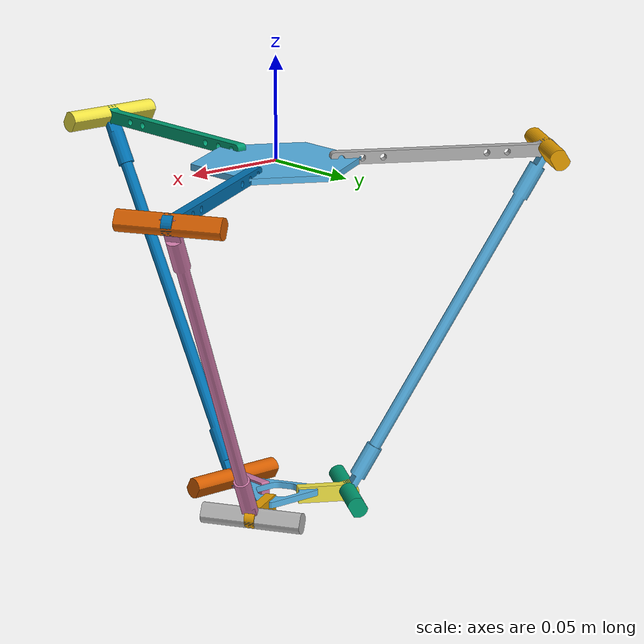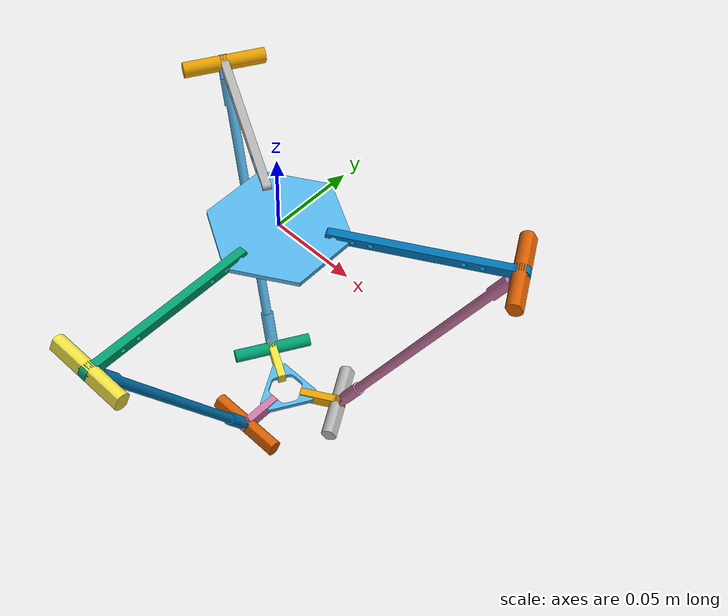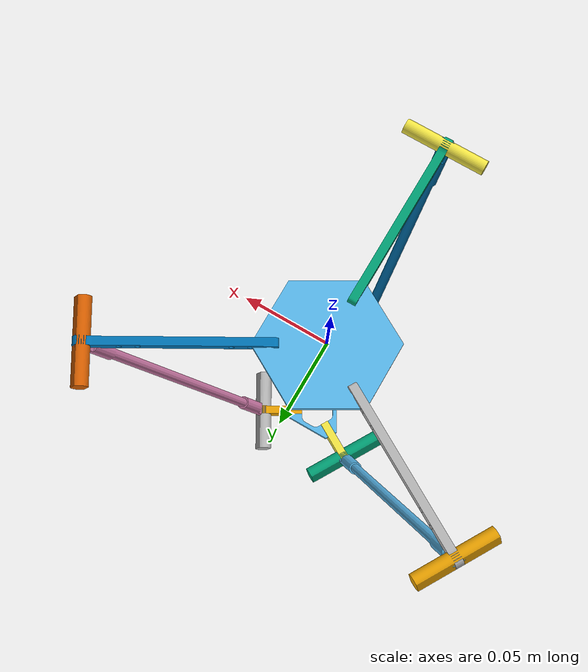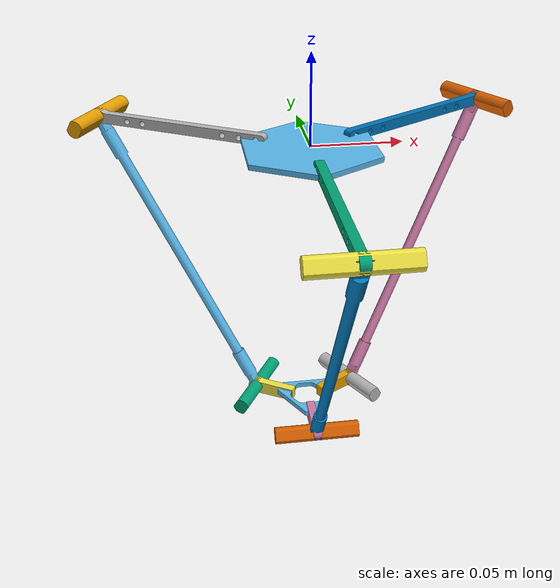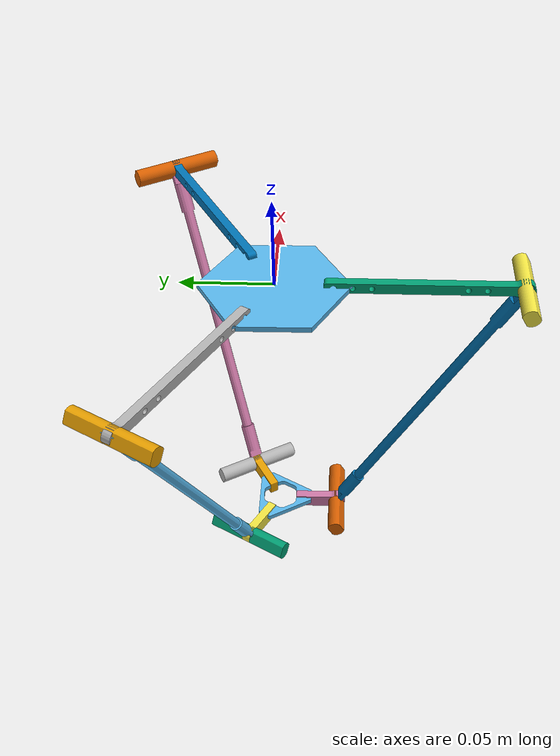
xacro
<?xml version="1.0"?>
<robot xmlns:xacro="http://www.ros.org/wiki/xacro" name="delta">

    <xacro:arg name="use_simulation" default="true"/>
    <xacro:if value="$(arg use_simulation)">
        <gazebo>
            <plugin name="arm_ros_control" filename="libarm_robot_hw_sim.so">
                <robotNamespace>/</robotNamespace>
                <robotSimType>arm_gazebo/ArmRobotHWSim</robotSimType>
            </plugin>
        </gazebo>
    </xacro:if>

    <xacro:include filename="$(find delta)/urdf/arm.urdf.xacro"/>
    <xacro:arm/>
    <xacro:include filename="$(find delta)/urdf/arm.transmission.xacro"/>
    <xacro:arm_transmission/>
</robot>

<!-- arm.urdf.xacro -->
<robot xmlns:xacro="http://www.ros.org/wiki/xacro" name="arm">

    <xacro:macro name="arm">
        <xacro:property name="k_f" value="0.141067"/>
        <xacro:property name="k_e" value="0.065287"/>
        <xacro:property name="r_f" value="0.09"/>
        <xacro:property name="r_e" value="0.192"/>
        <xacro:property name="active_joint_d" value="0.040721"/>
        <xacro:property name="parallel_d" value="0.096108"/>
        <xacro:property name="parallel_h" value="0.166214"/>
        <xacro:property name="PI_3" value="1.04619753"/>
        <xacro:property name="PI_3_2" value="2.09439507"/>
        <xacro:property name="v120_deg_2_rad" value="2.09439504"/>
        <xacro:property name="v240_deg_2_rad" value="4.18879013"/>

        <xacro:property name="active_arm_ixx" value="4.714e-6"/>
        <xacro:property name="active_arm_ixy" value="0."/>
        <xacro:property name="active_arm_ixz" value="0."/>
        <xacro:property name="active_arm_iyy" value="2.577e-8"/>
        <xacro:property name="active_arm_iyz" value="-8.235e-18"/>
        <xacro:property name="active_arm_izz" value="4.707e-6"/>
        <xacro:property name="active_arm_mass" value="0.00457"/>
        <xacro:property name="active_arm_x" value="0."/>
        <xacro:property name="active_arm_y" value="-0.042671"/>
        <xacro:property name="active_arm_z" value="0."/>

        <xacro:property name="passive_arm_ixx" value="4.4636101e-5"/>
        <xacro:property name="passive_arm_ixy" value="7.8174e-8"/>
        <xacro:property name="passive_arm_ixz" value="0."/>
        <xacro:property name="passive_arm_iyy" value="8.2492e-8"/>
        <xacro:property name="passive_arm_iyz" value="1.379e-19"/>
        <xacro:property name="passive_arm_izz" value="4.4642e-5"/>
        <xacro:property name="passive_arm_mass" value="0.011"/>
        <xacro:property name="passive_arm_x" value="-0.00168"/>
        <xacro:property name="passive_arm_y" value="0.096"/>
        <xacro:property name="passive_arm_z" value="0."/>

        <xacro:property name="parallel_up_ixx" value="3.16967e-7"/>
        <xacro:property name="parallel_up_ixy" value="0.00"/>
        <xacro:property name="parallel_up_ixz" value="0.00"/>
        <xacro:property name="parallel_up_iyy" value="5.926399e-6"/>
        <xacro:property name="parallel_up_iyz" value="2.4474e-8"/>
        <xacro:property name="parallel_up_izz" value="5.898139e-6"/>
        <xacro:property name="parallel_up_mass" value="0.027"/>
        <xacro:property name="parallel_up_x" value="0.00"/>
        <xacro:property name="parallel_up_y" value="0.0"/>
        <xacro:property name="parallel_up_z" value="0.0"/>

        <xacro:property name="parallel_down_ixx" value="3.16967e-7"/>
        <xacro:property name="parallel_down_ixy" value="1.095e-10"/>
        <xacro:property name="parallel_down_ixz" value="1.29e-10"/>
        <xacro:property name="parallel_down_iyy" value="5.926399e-6"/>
        <xacro:property name="parallel_down_iyz" value="2.4474e-8"/>
        <xacro:property name="parallel_down_izz" value="5.898139e-6"/>
        <xacro:property name="parallel_down_mass" value="0.027"/>
        <xacro:property name="parallel_down_x" value="0.00"/>
        <xacro:property name="parallel_down_y" value="0.0"/>
        <xacro:property name="parallel_down_z" value="0.0"/>

        <xacro:property name="move_base_ixx" value="4.91052e-7"/>
        <xacro:property name="move_base_ixy" value="0.00"/>
        <xacro:property name="move_base_ixz" value="0.00"/>
        <xacro:property name="move_base_iyy" value="6.2663e-8"/>
        <xacro:property name="move_base_iyz" value="3.4e-11"/>
        <xacro:property name="move_base_izz" value="4.59974e-7"/>
        <xacro:property name="move_base_mass" value="0.007"/>
        <xacro:property name="move_base_x" value="0.00"/>
        <xacro:property name="move_base_y" value="0.012536"/>
        <xacro:property name="move_base_z" value="0.0"/>

        <xacro:property name="base_link_ixx" value="3.5130112e-5"/>
        <xacro:property name="base_link_ixy" value="0.00"/>
        <xacro:property name="base_link_ixz" value="7.391e-19"/>
        <xacro:property name="base_link_iyy" value="3.5130112e-5"/>
        <xacro:property name="base_link_iyz" value="0.00"/>
        <xacro:property name="base_link_izz" value="7.0108029e-5"/>
        <xacro:property name="base_link_mass" value="0.101"/>
        <xacro:property name="base_link_x" value="0.00"/>
        <xacro:property name="base_link_y" value="0.00"/>
        <xacro:property name="base_link_z" value="-0.0015"/>

        <xacro:property name="move_EE_ixx" value="0.00"/>
        <xacro:property name="move_EE_ixy" value="0.00"/>
        <xacro:property name="move_EE_ixz" value="0.00"/>
        <xacro:property name="move_EE_iyy" value="0.00"/>
        <xacro:property name="move_EE_iyz" value="0.00"/>
        <xacro:property name="move_EE_izz" value="0.00"/>
        <xacro:property name="move_EE_mass" value="0.010"/>
        <xacro:property name="move_EE_x" value="0.00"/>
        <xacro:property name="move_EE_y" value="0.00"/>
        <xacro:property name="move_EE_z" value="0.00"/>
        <link name="world"></link>
        <link name="base_link">
            <visual>
                <origin xyz="0 0 0" rpy="0 0 0"/>
                <geometry>
                    <mesh filename="package://delta/meshes/base_link.stl" scale="0.001 0.001 0.001"/>
                </geometry>
            </visual>
            <collision>
                <origin xyz="0. 0 0." rpy="0 0 0"/>
                <geometry>
                    <mesh filename="package://delta/meshes/base_link.stl" scale="0.0001 0.0001 0.0001"/>
                </geometry>
            </collision>
            <inertial>
                <mass value="${base_link_mass}"/>
                <origin xyz="${base_link_x} ${base_link_y} ${base_link_z}"/>
                <inertia ixx="${base_link_ixx}" ixy="${base_link_ixy}" ixz="${base_link_ixz}"
                         iyy="${base_link_iyy}" iyz="${base_link_iyz}"
                         izz="${base_link_izz}"/>
            </inertial>
        </link>

        <joint name="fix_base" type="fixed">
            <parent link="world"/>
            <child link="base_link"/>
            <origin xyz="0. 0. 0." rpy="0 0 0"/>
        </joint>

        <link name="active_arm_1">
            <visual>
                <origin xyz="0 0 0" rpy="0 0 0"/>
                <geometry>
                    <mesh filename="package://delta/meshes/active_arm.stl" scale="0.001 0.001 0.001"/>
                </geometry>
            </visual>
            <collision>
                <origin xyz="0. 0. 0." rpy="0 0 0"/>
                <geometry>
                    <mesh filename="package://delta/meshes/active_arm.stl" scale="0.0001 0.0001 0.0001"/>
                </geometry>
            </collision>
            <inertial>
                <mass value="${active_arm_mass}"/>
                <origin xyz="${active_arm_x} ${active_arm_y} ${active_arm_z}"/>
                <inertia ixx="${active_arm_ixx}" ixy="${active_arm_ixy}" ixz="${active_arm_ixz}" iyy="${active_arm_iyy}"
                         iyz="${active_arm_iyz}"
                         izz="${active_arm_izz}"/>
            </inertial>
        </link>

        <link name="parallel_up_1">
            <visual>
                <origin xyz="0 0 0" rpy="0 0 0"/>
                <geometry>
                    <mesh filename="package://delta/meshes/parallel_up.stl" scale="0.001 0.001 0.001"/>
                </geometry>
            </visual>
            <collision>
                <origin xyz="0. 0 0." rpy="0 0 0"/>
                <geometry>
                    <mesh filename="package://delta/meshes/parallel_up.stl" scale="0.0001 0.0001 0.0001"/>
                </geometry>
            </collision>
            <inertial>
                <mass value="${parallel_up_mass}"/>
                <origin xyz="${parallel_up_x} ${parallel_up_y} ${parallel_up_z}"/>
                <inertia ixx="${parallel_up_ixx}" ixy="${parallel_up_ixy}" ixz="${parallel_up_ixz}"
                         iyy="${parallel_up_iyy}" iyz="${parallel_up_iyz}"
                         izz="${parallel_up_izz}"/>
            </inertial>
        </link>

        <link name="passive_arm_1">
            <visual>
                <origin xyz="0 0 0" rpy="0 0 0"/>
                <geometry>
                    <mesh filename="package://delta/meshes/passive_arm.stl" scale="0.001 0.001 0.001"/>
                </geometry>
            </visual>
            <collision>
                <origin xyz="0 0 0" rpy="0 0 0"/>
                <geometry>
                    <mesh filename="package://delta/meshes/passive_arm.stl" scale="0.0001 0.0001 0.0001"/>
                </geometry>
            </collision>
            <inertial>
                <mass value="${passive_arm_mass}"/>
                <origin xyz="${passive_arm_x} ${passive_arm_y} ${passive_arm_z}"/>
                <inertia ixx="${passive_arm_ixx}" ixy="${passive_arm_ixy}" ixz="${passive_arm_ixz}"
                         iyy="${passive_arm_iyy}" iyz="${passive_arm_iyz}"
                         izz="${passive_arm_izz}"/>
            </inertial>
        </link>

        <link name="parallel_down_1">
            <visual>
                <origin xyz="0 0 0" rpy="0 0 0"/>
                <geometry>
                    <mesh filename="package://delta/meshes/parallel_down.stl" scale="0.001 0.001 0.001"/>
                </geometry>
            </visual>
            <collision>
                <origin xyz="0 0 0" rpy="0 0 0"/>
                <geometry>
                    <mesh filename="package://delta/meshes/parallel_down.stl"
                          scale="0.0001 0.0001 0.0001"/>
                </geometry>
            </collision>
            <inertial>
                <mass value="${parallel_down_mass}"/>
                <origin xyz="${parallel_down_x} ${parallel_down_y} ${parallel_down_z}"/>
                <inertia ixx="${parallel_down_ixx}" ixy="${parallel_down_ixy}" ixz="${parallel_down_ixz}"
                         iyy="${parallel_down_iyy}" iyz="${parallel_down_iyz}"
                         izz="${parallel_down_izz}"/>
            </inertial>
        </link>

        <link name="move_base_1">
            <visual>
                <origin xyz="0 0 0" rpy="0 0 0"/>
                <geometry>
                    <mesh filename="package://delta/meshes/move_base.stl" scale="0.001 0.001 0.001"/>
                </geometry>
            </visual>
            <collision>
                <origin xyz="0 0 0" rpy="0 0 0"/>
                <geometry>
                    <mesh filename="package://delta/meshes/move_base.stl" scale="0.0001 0.0001 0.0001"/>
                </geometry>
            </collision>
            <inertial>
                <mass value="${move_base_mass}"/>
                <origin xyz="${move_base_x} ${move_base_y} ${move_base_z}"/>
                <inertia ixx="${move_base_ixx}" ixy="${move_base_ixy}" ixz="${move_base_ixz}" iyy="${move_base_iyy}"
                         iyz="${move_base_iyz}"
                         izz="${move_base_izz}"/>
            </inertial>
        </link>

        <joint name="active_joint1" type="revolute">
            <parent link="base_link"/>
            <child link="active_arm_1"/>
            <origin xyz="0 ${-active_joint_d} 0" rpy="0 0 0"/>
            <axis xyz="1 0 0"/>
            <limit lower="-3.14" upper="3.14" velocity="1" effort="1"/>
        </joint>

        <joint name="parallel_up_a_joint1" type="revolute">
            <parent link="active_arm_1"/>
            <child link="parallel_up_1"/>
            <origin xyz="0 -${r_f} 0" rpy="-${PI_3} 0 0"/>
            <axis xyz="1 0 0"/>
            <limit lower="-3.14" upper="3.14" velocity="1" effort="1"/>
        </joint>

        <joint name="parallel_up_b_joint1" type="revolute">
            <parent link="parallel_up_1"/>
            <child link="passive_arm_1"/>
            <origin xyz="0 0 0" rpy="0. 0 0"/>
            <axis xyz="0 0 1"/>
            <limit lower="-3.14" upper="3.14" velocity="1" effort="1"/>
        </joint>

        <joint name="parallel_down_b_joint1" type="revolute">
            <parent link="passive_arm_1"/>
            <child link="parallel_down_1"/>
            <origin xyz="0 ${r_e} 0" rpy="0 0 0"/>
            <axis xyz="0 0 1"/>
            <limit lower="-3.14" upper="3.14" velocity="1" effort="1"/>
        </joint>

        <joint name="parallel_down_a_joint1" type="revolute">
            <parent link="parallel_down_1"/>
            <child link="move_base_1"/>
            <origin xyz="0 0 0" rpy="${PI_3} 0 0"/>
            <axis xyz="1 0 0"/>
            <limit lower="-3.14" upper="3.14" velocity="1" effort="1"/>
        </joint>

        <link name="active_arm_2">
            <visual>
                <origin xyz="0 0 0" rpy="0 0 0"/>
                <geometry>
                    <mesh filename="package://delta/meshes/active_arm.stl" scale="0.001 0.001 0.001"/>
                </geometry>
            </visual>
            <collision>
                <origin xyz="0. 0. 0." rpy="0 0 0"/>
                <geometry>
                    <mesh filename="package://delta/meshes/active_arm.stl" scale="0.0001 0.0001 0.0001"/>
                </geometry>
            </collision>
            <inertial>
                <mass value="${active_arm_mass}"/>
                <origin xyz="${active_arm_x} ${active_arm_y} ${active_arm_z}"/>
                <inertia ixx="${active_arm_ixx}" ixy="${active_arm_ixy}" ixz="${active_arm_ixz}" iyy="${active_arm_iyy}"
                         iyz="${active_arm_iyz}"
                         izz="${active_arm_izz}"/>
            </inertial>
        </link>

        <link name="parallel_up_2">
            <visual>
                <origin xyz="0 0 0" rpy="0 0 0"/>
                <geometry>
                    <mesh filename="package://delta/meshes/parallel_up.stl" scale="0.001 0.001 0.001"/>
                </geometry>
            </visual>
            <collision>
                <origin xyz="0. 0 0." rpy="0 0 0"/>
                <geometry>
                    <mesh filename="package://delta/meshes/parallel_up.stl" scale="0.0001 0.0001 0.0001"/>
                </geometry>
            </collision>
            <inertial>
                <mass value="${parallel_up_mass}"/>
                <origin xyz="${parallel_up_x} ${parallel_up_y} ${parallel_up_z}"/>
                <inertia ixx="${parallel_up_ixx}" ixy="${parallel_up_ixy}" ixz="${parallel_up_ixz}"
                         iyy="${parallel_up_iyy}" iyz="${parallel_up_iyz}"
                         izz="${parallel_up_izz}"/>
            </inertial>
        </link>

        <link name="passive_arm_2">
            <visual>
                <origin xyz="0 0 0" rpy="0 0 0"/>
                <geometry>
                    <mesh filename="package://delta/meshes/passive_arm.stl" scale="0.001 0.001 0.001"/>
                </geometry>
            </visual>
            <collision>
                <origin xyz="0 0 0" rpy="0 0 0"/>
                <geometry>
                    <mesh filename="package://delta/meshes/passive_arm.stl" scale="0.0001 0.0001 0.0001"/>
                </geometry>
            </collision>
            <inertial>
                <mass value="${passive_arm_mass}"/>
                <origin xyz="${passive_arm_x} ${passive_arm_y} ${passive_arm_z}"/>
                <inertia ixx="${passive_arm_ixx}" ixy="${passive_arm_ixy}" ixz="${passive_arm_ixz}"
                         iyy="${passive_arm_iyy}" iyz="${passive_arm_iyz}"
                         izz="${passive_arm_izz}"/>
            </inertial>
        </link>

        <link name="parallel_down_2">
            <visual>
                <origin xyz="0 0 0" rpy="0 0 0"/>
                <geometry>
                    <mesh filename="package://delta/meshes/parallel_down.stl" scale="0.001 0.001 0.001"/>
                </geometry>
            </visual>
            <collision>
                <origin xyz="0 0 0" rpy="0 0 0"/>
                <geometry>
                    <mesh filename="package://delta/meshes/parallel_down.stl"
                          scale="0.0001 0.0001 0.0001"/>
                </geometry>
            </collision>
            <inertial>
                <mass value="${parallel_down_mass}"/>
                <origin xyz="${parallel_down_x} ${parallel_down_y} ${parallel_down_z}"/>
                <inertia ixx="${parallel_down_ixx}" ixy="${parallel_down_ixy}" ixz="${parallel_down_ixz}"
                         iyy="${parallel_down_iyy}" iyz="${parallel_down_iyz}"
                         izz="${parallel_down_izz}"/>
            </inertial>
        </link>

        <link name="move_base_2">
            <visual>
                <origin xyz="0 0 0" rpy="0 0 0"/>
                <geometry>
                    <mesh filename="package://delta/meshes/move_base.stl" scale="0.001 0.001 0.001"/>
                </geometry>
            </visual>
            <collision>
                <origin xyz="0 0 0" rpy="0 0 0"/>
                <geometry>
                    <mesh filename="package://delta/meshes/move_base.stl" scale="0.0001 0.0001 0.0001"/>
                </geometry>
            </collision>
            <inertial>
                <mass value="${move_base_mass}"/>
                <origin xyz="${move_base_x} ${move_base_y} ${move_base_z}"/>
                <inertia ixx="${move_base_ixx}" ixy="${move_base_ixy}" ixz="${move_base_ixz}" iyy="${move_base_iyy}"
                         iyz="${move_base_iyz}"
                         izz="${move_base_izz}"/>
            </inertial>
        </link>

        <joint name="active_joint2" type="revolute">
            <parent link="base_link"/>
            <child link="active_arm_2"/>
            <origin xyz="-${(active_joint_d)*cos(pi/6)} ${(active_joint_d)*sin(pi/6)} 0." rpy="0 0 -${v120_deg_2_rad}"/>
            <axis xyz="1 0 0"/>
            <limit lower="-3.14" upper="3.14" velocity="1" effort="1"/>
        </joint>

        <joint name="parallel_up_a_joint2" type="revolute">
            <parent link="active_arm_2"/>
            <child link="parallel_up_2"/>
            <origin xyz="0 -${r_f} 0" rpy="-${PI_3} 0 0"/>
            <axis xyz="1 0 0"/>
            <limit lower="-3.14" upper="3.14" velocity="1" effort="1"/>
        </joint>

        <joint name="parallel_up_b_joint2" type="revolute">
            <parent link="parallel_up_2"/>
            <child link="passive_arm_2"/>
            <origin xyz="0 0 0" rpy="0 0 0"/>
            <axis xyz="0 0 1"/>
            <limit lower="-3.14" upper="3.14" velocity="1" effort="1"/>
        </joint>

        <joint name="parallel_down_b_joint2" type="revolute">
            <parent link="passive_arm_2"/>
            <child link="parallel_down_2"/>
            <origin xyz="0 ${r_e} 0." rpy="0 0 0"/>
            <axis xyz="0 0 1"/>
            <limit lower="-3.14" upper="3.14" velocity="1" effort="1"/>
        </joint>

        <joint name="parallel_down_a_joint2" type="revolute">
            <parent link="parallel_down_2"/>
            <child link="move_base_2"/>
            <origin xyz="0 0 0" rpy="${PI_3} 0 0"/>
            <axis xyz="1 0 0"/>
            <limit lower="-3.14" upper="3.14" velocity="1" effort="1"/>
        </joint>

        <link name="active_arm_3">
            <visual>
                <origin xyz="0 0 0" rpy="0 0 0"/>
                <geometry>
                    <mesh filename="package://delta/meshes/active_arm.stl" scale="0.001 0.001 0.001"/>
                </geometry>
            </visual>
            <collision>
                <origin xyz="0. 0. 0." rpy="0 0 0"/>
                <geometry>
                    <mesh filename="package://delta/meshes/active_arm.stl" scale="0.0001 0.0001 0.0001"/>
                </geometry>
            </collision>
            <inertial>
                <mass value="${active_arm_mass}"/>
                <origin xyz="${active_arm_x} ${active_arm_y} ${active_arm_z}"/>
                <inertia ixx="${active_arm_ixx}" ixy="${active_arm_ixy}" ixz="${active_arm_ixz}" iyy="${active_arm_iyy}"
                         iyz="${active_arm_iyz}"
                         izz="${active_arm_izz}"/>
            </inertial>
        </link>

        <link name="parallel_up_3">
            <visual>
                <origin xyz="0 0 0" rpy="0 0 0"/>
                <geometry>
                    <mesh filename="package://delta/meshes/parallel_up.stl" scale="0.001 0.001 0.001"/>
                </geometry>
            </visual>
            <collision>
                <origin xyz="0. 0 0." rpy="0 0 0"/>
                <geometry>
                    <mesh filename="package://delta/meshes/parallel_up.stl" scale="0.0001 0.0001 0.0001"/>
                </geometry>
            </collision>
            <inertial>
                <mass value="${parallel_up_mass}"/>
                <origin xyz="${parallel_up_x} ${parallel_up_y} ${parallel_up_z}"/>
                <inertia ixx="${parallel_up_ixx}" ixy="${parallel_up_ixy}" ixz="${parallel_up_ixz}"
                         iyy="${parallel_up_iyy}" iyz="${parallel_up_iyz}"
                         izz="${parallel_up_izz}"/>
            </inertial>
        </link>

        <link name="passive_arm_3">
            <visual>
                <origin xyz="0 0 0" rpy="0 0 0"/>
                <geometry>
                    <mesh filename="package://delta/meshes/passive_arm.stl" scale="0.001 0.001 0.001"/>
                </geometry>
            </visual>
            <collision>
                <origin xyz="0 0 0" rpy="0 0 0"/>
                <geometry>
                    <mesh filename="package://delta/meshes/passive_arm.stl" scale="0.0001 0.0001 0.0001"/>
                </geometry>
            </collision>
            <inertial>
                <mass value="${passive_arm_mass}"/>
                <origin xyz="${passive_arm_x} ${passive_arm_y} ${passive_arm_z}"/>
                <inertia ixx="${passive_arm_ixx}" ixy="${passive_arm_ixy}" ixz="${passive_arm_ixz}"
                         iyy="${passive_arm_iyy}" iyz="${passive_arm_iyz}"
                         izz="${passive_arm_izz}"/>
            </inertial>
        </link>

        <link name="parallel_down_3">
            <visual>
                <origin xyz="0 0 0" rpy="0 0 0"/>
                <geometry>
                    <mesh filename="package://delta/meshes/parallel_down.stl" scale="0.001 0.001 0.001"/>
                </geometry>
            </visual>
            <collision>
                <origin xyz="0 0 0" rpy="0 0 0"/>
                <geometry>
                    <mesh filename="package://delta/meshes/parallel_down.stl"
                          scale="0.0001 0.0001 0.0001"/>
                </geometry>
            </collision>
            <inertial>
                <mass value="${parallel_down_mass}"/>
                <origin xyz="${parallel_down_x} ${parallel_down_y} ${parallel_down_z}"/>
                <inertia ixx="${parallel_down_ixx}" ixy="${parallel_down_ixy}" ixz="${parallel_down_ixz}"
                         iyy="${parallel_down_iyy}" iyz="${parallel_down_iyz}"
                         izz="${parallel_down_izz}"/>
            </inertial>
        </link>

        <link name="move_base_3">
            <visual>
                <origin xyz="0 0 0" rpy="0 0 0"/>
                <geometry>
                    <mesh filename="package://delta/meshes/move_base.stl" scale="0.001 0.001 0.001"/>
                </geometry>
            </visual>
            <collision>
                <origin xyz="0 0 0" rpy="0 0 0"/>
                <geometry>
                    <mesh filename="package://delta/meshes/move_base.stl" scale="0.0001 0.0001 0.0001"/>
                </geometry>
            </collision>
            <inertial>
                <mass value="${move_base_mass}"/>
                <origin xyz="${move_base_x} ${move_base_y} ${move_base_z}"/>
                <inertia ixx="${move_base_ixx}" ixy="${move_base_ixy}" ixz="${move_base_ixz}" iyy="${move_base_iyy}"
                         iyz="${move_base_iyz}"
                         izz="${move_base_izz}"/>
            </inertial>
        </link>

        <joint name="active_joint3" type="revolute">
            <parent link="base_link"/>
            <child link="active_arm_3"/>
            <origin xyz="${(active_joint_d)*cos(pi/6)} ${(active_joint_d)*sin(pi/6)} 0." rpy="0 0 ${v120_deg_2_rad}"/>
            <axis xyz="1 0 0"/>
            <limit lower="-3.14" upper="3.14" velocity="1" effort="1"/>
        </joint>

        <joint name="parallel_up_a_joint3" type="revolute">
            <parent link="active_arm_3"/>
            <child link="parallel_up_3"/>
            <origin xyz="0 -${r_f} 0" rpy="-${PI_3} 0 0"/>
            <axis xyz="1 0 0"/>
            <limit lower="-3.14" upper="3.14" velocity="1" effort="1"/>
        </joint>

        <joint name="parallel_up_b_joint3" type="revolute">
            <parent link="parallel_up_3"/>
            <child link="passive_arm_3"/>
            <origin xyz="0 0 0" rpy="0 0 0"/>
            <axis xyz="0 0 1"/>
            <limit lower="-3.14" upper="3.14" velocity="1" effort="1"/>
        </joint>

        <joint name="parallel_down_b_joint3" type="revolute">
            <parent link="passive_arm_3"/>
            <child link="parallel_down_3"/>
            <origin xyz="0 ${r_e} 0." rpy="0 0 0"/>
            <axis xyz="0 0 1"/>
            <limit lower="-3.14" upper="3.14" velocity="1" effort="1"/>
        </joint>

        <joint name="parallel_down_a_joint3" type="revolute">
            <parent link="parallel_down_3"/>
            <child link="move_base_3"/>
            <origin xyz="0 0 0" rpy="${PI_3} 0 0"/>
            <axis xyz="1 0 0"/>
            <limit lower="-3.14" upper="3.14" velocity="1" effort="1"/>
        </joint>

        <link name="move_EE">
            <visual>
                <origin xyz="0 0 0" rpy="0 0 0"/>
                <geometry>
                    <mesh filename="package://delta/meshes/move_EE.stl" scale="0.001 0.001 0.001"/>
                </geometry>
            </visual>
            <collision>
                <origin xyz="0. 0 0." rpy="0 0 0"/>
                <geometry>
                    <mesh filename="package://delta/meshes/move_EE.stl" scale="0.001 0.001 0.001"/>
                </geometry>
            </collision>
            <inertial>
                <mass value="${move_EE_mass}"/>
                <origin xyz="${move_EE_x} ${move_EE_y} ${move_EE_z}"/>
                <inertia ixx="${move_EE_ixx}" ixy="${move_EE_ixy}" ixz="${move_EE_ixz}" iyy="${move_EE_iyy}"
                         iyz="${move_EE_iyz}"
                         izz="${move_EE_izz}"/>
            </inertial>
        </link>
        <joint name="con_move_base_EE_1" type="fixed">
            <parent link="move_base_1"/>
            <child link="move_EE"/>
            <origin xyz="0. 0.03465 0." rpy="0 0 0"/>
        </joint>

        <gazebo>
            <joint name="con_move_base_EE_2" type="fixed">
                <parent>move_base_2</parent>
                <child>move_EE</child>
                <origin xyz="0. 0.03465 0." rpy="0 0 0"/>
            </joint>
            <joint name="con_move_base_EE_3" type="fixed">
                <parent>move_base_3</parent>
                <child>move_EE</child>
                <origin xyz="0. 0.03465 0." rpy="0 0 0"/>
            </joint>
        </gazebo>
        <link name="computer_EE">
            <visual>
                <origin xyz="0 0 0" rpy="0 0 0"/>
                <geometry>
                    <sphere radius="0.001"/>
                </geometry>
            </visual>
            <inertial>
                <mass value="${move_EE_mass}"/>
                <origin xyz="${move_EE_x} ${move_EE_y} ${move_EE_z}"/>
                <inertia ixx="${move_EE_ixx}" ixy="${move_EE_ixy}" ixz="${move_EE_ixz}" iyy="${move_EE_iyy}"
                         iyz="${move_EE_iyz}"
                         izz="${move_EE_izz}"/>
            </inertial>
        </link>
        <link name="computer_x">
            <visual>
                <origin xyz="0 0 0" rpy="0 0 0"/>
                <geometry>
                    <sphere radius="0.001"/>
                </geometry>
            </visual>
            <inertial>
                <mass value="${move_EE_mass}"/>
                <origin xyz="${move_EE_x} ${move_EE_y} ${move_EE_z}"/>
                <inertia ixx="${move_EE_ixx}" ixy="${move_EE_ixy}" ixz="${move_EE_ixz}" iyy="${move_EE_iyy}"
                         iyz="${move_EE_iyz}"
                         izz="${move_EE_izz}"/>
            </inertial>
        </link>
        <link name="computer_y">
            <visual>
                <origin xyz="0 0 0" rpy="0 0 0"/>
                <geometry>
                    <sphere radius="0.001"/>
                </geometry>
            </visual>
            <inertial>
                <mass value="${move_EE_mass}"/>
                <origin xyz="${move_EE_x} ${move_EE_y} ${move_EE_z}"/>
                <inertia ixx="${move_EE_ixx}" ixy="${move_EE_ixy}" ixz="${move_EE_ixz}" iyy="${move_EE_iyy}"
                         iyz="${move_EE_iyz}"
                         izz="${move_EE_izz}"/>
            </inertial>
        </link>
        <joint name="computer_x_joint" type="prismatic">
            <parent link="base_link"/>
            <child link="computer_x"/>
            <origin xyz="0. 0. 0." rpy="0 0 0"/>
            <axis xyz="1 0 0"/>
            <limit lower="-100" upper="100" velocity="10" effort="10"/>
        </joint>
        <joint name="computer_y_joint" type="prismatic">
            <parent link="computer_x"/>
            <child link="computer_y"/>
            <origin xyz="0. 0. 0." rpy="0 0 0"/>
            <axis xyz="0 1 0"/>
            <limit lower="-100" upper="100" velocity="10" effort="10"/>
        </joint>
        <joint name="computer_EE_joint" type="prismatic">
            <parent link="computer_y"/>
            <child link="computer_EE"/>
            <origin xyz="0. 0. 0." rpy="0 0 0"/>
            <axis xyz="0 0 1"/>
            <limit lower="-100" upper="100" velocity="10" effort="10"/>
        </joint>
    </xacro:macro>
</robot>
